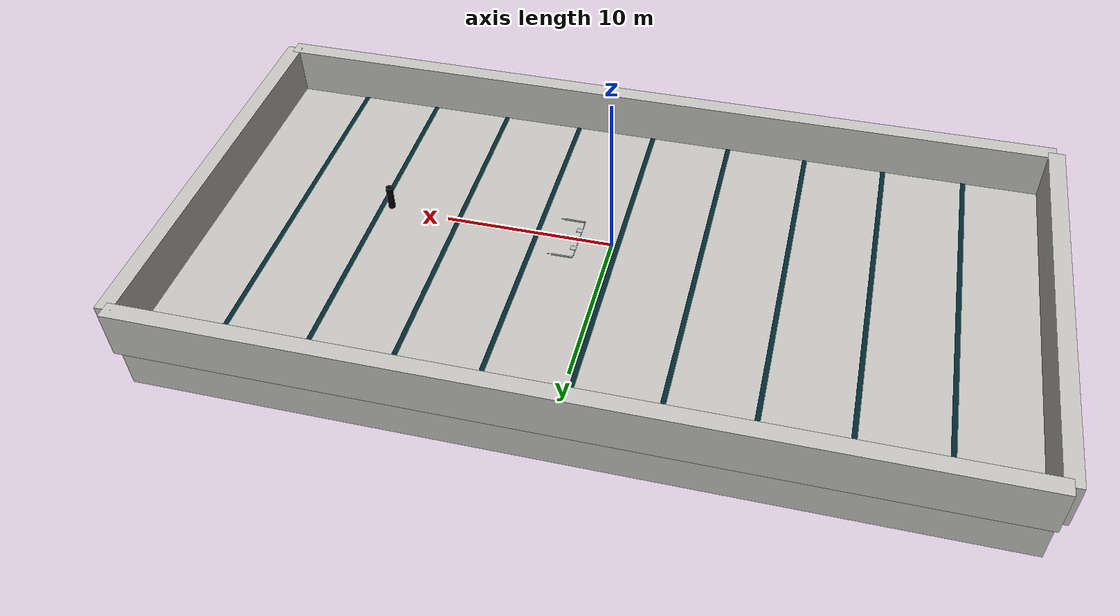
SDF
<?xml version="1.0" ?>
<sdf version="1.6">
  <world name="underwater_world">

    <!-- Configure the scene -->
    <scene>
      <!-- For turquoise ambient -->
      <ambient>0.0 1 1</ambient>
      <background>0.0 0.7 0.8</background>
    </scene>

    <!-- Configure the world physics -->
    <physics name="1ms" type="dart">
      <max_step_size>0.001</max_step_size>
      <real_time_factor>1.0</real_time_factor>
    </physics>
    <plugin
      filename="gz-sim-physics-system"
      name="gz::sim::systems::Physics">
    </plugin>
    <plugin
      filename="gz-sim-sensors-system"
      name="gz::sim::systems::Sensors">
      <render_engine>ogre2</render_engine>
    </plugin>
    <plugin
      filename="gz-sim-user-commands-system"
      name="gz::sim::systems::UserCommands">
    </plugin>
    <plugin
      filename="gz-sim-scene-broadcaster-system"
      name="gz::sim::systems::SceneBroadcaster">
    </plugin>
    <plugin
      filename="gz-sim-buoyancy-system"
      name="gz::sim::systems::Buoyancy">
      <uniform_fluid_density>1025</uniform_fluid_density>
    </plugin>
    <plugin filename="gz-sim-imu-system"
            name="gz::sim::systems::Imu">
    </plugin>
    <plugin
      filename="gz-sim-air-pressure-system"
      name="gz::sim::systems::AirPressure">
    </plugin>

    <!-- Configure the GUI -->
    <gui>
      <!-- For some reason this is required to get the GUI to render the scene ambient/background -->
      <plugin filename="MinimalScene" name="3D View">
        <gz-gui>
          <title>3D View</title>
          <property type="bool" key="showTitleBar">false</property>
          <property type="string" key="state">docked</property>
        </gz-gui>

        <engine>ogre2</engine>
        <scene>scene</scene>
        <ambient>0.0 1.0 1.0</ambient>
        <background_color>0.0 0.7 0.8</background_color>
      </plugin>

      <!-- Plugins that add functionality to the scene (these got removed when using the MinimalScene Plugin so we have to re-add them-->
      <plugin filename="EntityContextMenuPlugin" name="Entity context menu">
        <gz-gui>
          <property key="state" type="string">floating</property>
          <property key="width" type="double">5</property>
          <property key="height" type="double">5</property>
          <property key="showTitleBar" type="bool">false</property>
        </gz-gui>
      </plugin>
      <plugin filename="GzSceneManager" name="Scene Manager">
        <gz-gui>
          <property key="resizable" type="bool">false</property>
          <property key="width" type="double">5</property>
          <property key="height" type="double">5</property>
          <property key="state" type="string">floating</property>
          <property key="showTitleBar" type="bool">false</property>
        </gz-gui>
      </plugin>
      <plugin filename="InteractiveViewControl" name="Interactive view control">
        <gz-gui>
          <property key="resizable" type="bool">false</property>
          <property key="width" type="double">5</property>
          <property key="height" type="double">5</property>
          <property key="state" type="string">floating</property>
          <property key="showTitleBar" type="bool">false</property>
        </gz-gui>
      </plugin>
      <plugin filename="CameraTracking" name="Camera Tracking">
        <gz-gui>
          <property key="resizable" type="bool">false</property>
          <property key="width" type="double">5</property>
          <property key="height" type="double">5</property>
          <property key="state" type="string">floating</property>
          <property key="showTitleBar" type="bool">false</property>
        </gz-gui>
      </plugin>

      <plugin filename="Spawn" name="Spawn Entities">
        <gz-gui>
          <property key="resizable" type="bool">false</property>
          <property key="width" type="double">5</property>
          <property key="height" type="double">5</property>
          <property key="state" type="string">floating</property>
          <property key="showTitleBar" type="bool">false</property>
        </gz-gui>
      </plugin>

      <!-- World control -->
      <plugin filename="WorldControl" name="World control">
        <gz-gui>
          <title>World control</title>
          <property type="bool" key="showTitleBar">false</property>
          <property type="bool" key="resizable">false</property>
          <property type="double" key="height">72</property>
          <property type="double" key="z">1</property>

          <property type="string" key="state">floating</property>
          <anchors target="3D View">
            <line own="left" target="left"/>
            <line own="bottom" target="bottom"/>
          </anchors>
        </gz-gui>

        <play_pause>true</play_pause>
        <step>true</step>
        <start_paused>true</start_paused>
        <use_event>true</use_event>

      </plugin>

      <!-- World statistics -->
      <plugin filename="WorldStats" name="World stats">
        <gz-gui>
          <title>World stats</title>
          <property type="bool" key="showTitleBar">false</property>
          <property type="bool" key="resizable">false</property>
          <property type="double" key="height">110</property>
          <property type="double" key="width">290</property>
          <property type="double" key="z">1</property>

          <property type="string" key="state">floating</property>
          <anchors target="3D View">
            <line own="right" target="right"/>
            <line own="bottom" target="bottom"/>
          </anchors>
        </gz-gui>

        <sim_time>true</sim_time>
        <real_time>true</real_time>
        <real_time_factor>true</real_time_factor>
        <iterations>true</iterations>
      </plugin>

      <!-- Insert simple shapes -->
      <plugin filename="Shapes" name="Shapes">
        <gz-gui>
          <property key="resizable" type="bool">false</property>
          <property key="x" type="double">0</property>
          <property key="y" type="double">0</property>
          <property key="width" type="double">250</property>
          <property key="height" type="double">50</property>
          <property key="state" type="string">floating</property>
          <property key="showTitleBar" type="bool">false</property>
          <property key="cardBackground" type="string">#666666</property>
        </gz-gui>
      </plugin>

      <!-- Inspector -->
      <plugin filename="ComponentInspector" name="Component inspector">
        <gz-gui>
          <property type="string" key="state">docked</property>
        </gz-gui>
      </plugin>

      <!-- Entity tree -->
      <plugin filename="EntityTree" name="Entity tree">
        <gz-gui>
          <property type="string" key="state">docked</property>
        </gz-gui>
      </plugin>

      <!-- Translate/Rotate Tools -->
      <plugin filename="TransformControl" name="Transform control">
        <gz-gui>
          <property key="resizable" type="bool">false</property>
          <property key="x" type="double">0</property>
          <property key="y" type="double">50</property>
          <property key="width" type="double">250</property>
          <property key="height" type="double">50</property>
          <property key="state" type="string">floating</property>
          <property key="showTitleBar" type="bool">false</property>
          <property key="cardBackground" type="string">#777777</property>
        </gz-gui>
      </plugin>

    </gui>

    <!-- 3D MODELS -->
    <light name='sun1' type='directional'>
      <pose>0 0 10 0 0 0</pose>
      <cast_shadows>false</cast_shadows>
      <intensity>2</intensity>
      <direction>-0.5 0.10000000000000001 -0.90000000000000002</direction>
      <diffuse>0.800000012 0.800000012 0.800000012 1</diffuse>
      <specular>0.200000003 0.200000003 0.200000003 1</specular>
      <attenuation>
        <range>1000</range>
        <linear>0.01</linear>
        <constant>0.90000000000000002</constant>
        <quadratic>0.001</quadratic>
      </attenuation>
      <spot>
        <inner_angle>0</inner_angle>
        <outer_angle>0</outer_angle>
        <falloff>0</falloff>
      </spot>
    </light>

    <light name='sun2' type='point'>
      <pose>0 0 10 0 0 0</pose>
      <cast_shadows>false</cast_shadows>
      <intensity>2</intensity>
      <direction>-0.5 0.10000000000000001 -0.90000000000000002</direction>
      <diffuse>0.800000012 0.800000012 0.800000012 1</diffuse>
      <specular>0.200000003 0.200000003 0.200000003 1</specular>
      <attenuation>
        <range>1000</range>
        <linear>0.01</linear>
        <constant>0.90000000000000002</constant>
        <quadratic>0.001</quadratic>
      </attenuation>
      <spot>
        <inner_angle>0</inner_angle>
        <outer_angle>0</outer_angle>
        <falloff>0</falloff>
      </spot>
    </light>

    <model name='long_wall_1'>
      <pose>0 -12.5 0 0 0 0</pose>
      <link name='box_link'>
        <inertial>
          <inertia>
            <ixx>0.16666</ixx>
            <ixy>0</ixy>
            <ixz>0</ixz>
            <iyy>0.16666</iyy>
            <iyz>0</iyz>
            <izz>0.16666</izz>
          </inertia>
          <mass>1</mass>
          <pose>0 0 0 0 0 0</pose>
        </inertial>
        <collision name='box_collision'>
          <geometry>
            <box>
              <size>50 1 3</size>
            </box>
          </geometry>
          <surface>
            <friction>
              <ode/>
            </friction>
            <bounce/>
            <contact/>
          </surface>
        </collision>
        <visual name='box_visual'>
          <geometry>
            <box>
              <size>50 1 3</size>
            </box>
          </geometry>
          <material>
            <ambient>0.753, 0.749, 0.737 1</ambient>
            <diffuse>0.753, 0.749, 0.737 1</diffuse>
            <specular>0.753, 0.749, 0.737 1</specular>
          </material>
        </visual>
        <pose>0 0 0 0 0 0</pose>
        <enable_wind>false</enable_wind>
      </link>
      <static>true</static>
      <self_collide>false</self_collide>
    </model>
    <model name='long_wall_2'>
      <pose>0 12.5 0 0 0 0</pose>
      <link name='box_link'>
        <inertial>
          <inertia>
            <ixx>0.16666</ixx>
            <ixy>0</ixy>
            <ixz>0</ixz>
            <iyy>0.16666</iyy>
            <iyz>0</iyz>
            <izz>0.16666</izz>
          </inertia>
          <mass>1</mass>
          <pose>0 0 0 0 0 0</pose>
        </inertial>
        <collision name='box_collision'>
          <geometry>
            <box>
              <size>50 1 3</size>
            </box>
          </geometry>
          <surface>
            <friction>
              <ode/>
            </friction>
            <bounce/>
            <contact/>
          </surface>
        </collision>
        <visual name='box_visual'>
          <geometry>
            <box>
              <size>50 1 3</size>
            </box>
          </geometry>
          <material>
            <ambient>0.753, 0.749, 0.737 1</ambient>
            <diffuse>0.753, 0.749, 0.737 1</diffuse>
            <specular>0.753, 0.749, 0.737 1</specular>
          </material>
        </visual>
        <pose>0 0 0 0 0 0</pose>
        <enable_wind>false</enable_wind>
      </link>
      <static>true</static>
      <self_collide>false</self_collide>
    </model>
    <model name='wide_wall_1'>
      <pose>25 0 0 0 0 1.57</pose>
      <link name='box_link'>
        <inertial>
          <inertia>
            <ixx>0.16666</ixx>
            <ixy>0</ixy>
            <ixz>0</ixz>
            <iyy>0.16666</iyy>
            <iyz>0</iyz>
            <izz>0.16666</izz>
          </inertia>
          <mass>1</mass>
          <pose>0 0 0 0 0 0</pose>
        </inertial>
        <collision name='box_collision'>
          <geometry>
            <box>
              <size>25 1 3</size>
            </box>
          </geometry>
          <surface>
            <friction>
              <ode/>
            </friction>
            <bounce/>
            <contact/>
          </surface>
        </collision>
        <visual name='box_visual'>
          <geometry>
            <box>
              <size>25 1 3</size>
            </box>
          </geometry>
          <material>
            <ambient>0.753, 0.749, 0.737 1</ambient>
            <diffuse>0.753, 0.749, 0.737 1</diffuse>
            <specular>0.753, 0.749, 0.737 1</specular>
          </material>
        </visual>
        <pose>0 0 0 0 0 0</pose>
        <enable_wind>false</enable_wind>
      </link>
      <static>true</static>
      <self_collide>false</self_collide>
    </model>
    <model name='wide_wall_2'>
      <pose>-25 0 0 0 0 1.57</pose>
      <link name='box_link'>
        <inertial>
          <inertia>
            <ixx>0.16666</ixx>
            <ixy>0</ixy>
            <ixz>0</ixz>
            <iyy>0.16666</iyy>
            <iyz>0</iyz>
            <izz>0.16666</izz>
          </inertia>
          <mass>1</mass>
          <pose>0 0 0 0 0 0</pose>
        </inertial>
        <collision name='box_collision'>
          <geometry>
            <box>
              <size>25 1 3</size>
            </box>
          </geometry>
          <surface>
            <friction>
              <ode/>
            </friction>
            <bounce/>
            <contact/>
          </surface>
        </collision>
        <visual name='box_visual'>
          <geometry>
            <box>
              <size>25 1 3</size>
            </box>
          </geometry>
          <material>
            <ambient>0.753, 0.749, 0.737 1</ambient>
            <diffuse>0.753, 0.749, 0.737 1</diffuse>
            <specular>0.753, 0.749, 0.737 1</specular>
          </material>
        </visual>
        <pose>0 0 0 0 0 0</pose>
        <enable_wind>false</enable_wind>
      </link>
      <static>true</static>
      <self_collide>false</self_collide>
    </model>

    <model name='floor'>
      <pose>0 0 -3 0 0 0</pose>
      <link name='box_link'>
        <inertial>
          <inertia>
            <ixx>0.16666</ixx>
            <ixy>0</ixy>
            <ixz>0</ixz>
            <iyy>0.16666</iyy>
            <iyz>0</iyz>
            <izz>0.16666</izz>
          </inertia>
          <mass>1</mass>
          <pose>0 0 0 0 0 0</pose>
        </inertial>
        <collision name='box_collision'>
          <geometry>
            <box>
              <size>50 25 3</size>
            </box>
          </geometry>
          <surface>
            <friction>
              <ode/>
            </friction>
            <bounce/>
            <contact/>
          </surface>
        </collision>
        <visual name='box_visual'>
          <geometry>
            <box>
              <size>50 25 3</size>
            </box>
          </geometry>
          <material>
            <ambient>0.753, 0.749, 0.737 1</ambient>
            <diffuse>0.753, 0.749, 0.737 1</diffuse>
            <specular>0.753, 0.749, 0.737 1</specular>
          </material>
        </visual>
        <pose>0 0 0 0 0 0</pose>
        <enable_wind>false</enable_wind>
      </link>
      <static>true</static>
      <self_collide>false</self_collide>
    </model>

    <model name='lane1'>
      <pose>-20 0 -1.49 0 0 0</pose>
      <link name='box_link'>
        <inertial>
          <inertia>
            <ixx>0.16666</ixx>
            <ixy>0</ixy>
            <ixz>0</ixz>
            <iyy>0.16666</iyy>
            <iyz>0</iyz>
            <izz>0.16666</izz>
          </inertia>
          <mass>1</mass>
          <pose>0 0 0 0 0 0</pose>
        </inertial>
        <visual name='box_visual'>
          <geometry>
            <box>
              <size>.3 25 .01</size>
            </box>
          </geometry>
          <material>
            <ambient>0, 0.153, 0.18, 1</ambient>
            <diffuse>0, 0.153, 0.18, 1</diffuse>
            <specular>0, 0.153, 0.18, 1</specular>
          </material>
        </visual>
        <pose>0 0 0 0 0 0</pose>
        <enable_wind>false</enable_wind>
      </link>
      <static>true</static>
      <self_collide>false</self_collide>
    </model>

    <model name='lane2'>
      <pose>-15 0 -1.49 0 0 0</pose>
      <link name='box_link'>
        <inertial>
          <inertia>
            <ixx>0.16666</ixx>
            <ixy>0</ixy>
            <ixz>0</ixz>
            <iyy>0.16666</iyy>
            <iyz>0</iyz>
            <izz>0.16666</izz>
          </inertia>
          <mass>1</mass>
          <pose>0 0 0 0 0 0</pose>
        </inertial>
        <visual name='box_visual'>
          <geometry>
            <box>
              <size>.3 25 .01</size>
            </box>
          </geometry>
          <material>
            <ambient>0, 0.153, 0.18, 1</ambient>
            <diffuse>0, 0.153, 0.18, 1</diffuse>
            <specular>0, 0.153, 0.18, 1</specular>
          </material>
        </visual>
        <pose>0 0 0 0 0 0</pose>
        <enable_wind>false</enable_wind>
      </link>
      <static>true</static>
      <self_collide>false</self_collide>
    </model>

    <model name='lane3'>
      <pose>-10 0 -1.49 0 0 0</pose>
      <link name='box_link'>
        <inertial>
          <inertia>
            <ixx>0.16666</ixx>
            <ixy>0</ixy>
            <ixz>0</ixz>
            <iyy>0.16666</iyy>
            <iyz>0</iyz>
            <izz>0.16666</izz>
          </inertia>
          <mass>1</mass>
          <pose>0 0 0 0 0 0</pose>
        </inertial>
        <visual name='box_visual'>
          <geometry>
            <box>
              <size>.3 25 .01</size>
            </box>
          </geometry>
          <material>
            <ambient>0, 0.153, 0.18, 1</ambient>
            <diffuse>0, 0.153, 0.18, 1</diffuse>
            <specular>0, 0.153, 0.18, 1</specular>
          </material>
        </visual>
        <pose>0 0 0 0 0 0</pose>
        <enable_wind>false</enable_wind>
      </link>
      <static>true</static>
      <self_collide>false</self_collide>
    </model>

    <model name='lane4'>
      <pose>-5 0 -1.49 0 0 0</pose>
      <link name='box_link'>
        <inertial>
          <inertia>
            <ixx>0.16666</ixx>
            <ixy>0</ixy>
            <ixz>0</ixz>
            <iyy>0.16666</iyy>
            <iyz>0</iyz>
            <izz>0.16666</izz>
          </inertia>
          <mass>1</mass>
          <pose>0 0 0 0 0 0</pose>
        </inertial>
        <visual name='box_visual'>
          <geometry>
            <box>
              <size>.3 25 .01</size>
            </box>
          </geometry>
          <material>
            <ambient>0, 0.153, 0.18, 1</ambient>
            <diffuse>0, 0.153, 0.18, 1</diffuse>
            <specular>0, 0.153, 0.18, 1</specular>
          </material>
        </visual>
        <pose>0 0 0 0 0 0</pose>
        <enable_wind>false</enable_wind>
      </link>
      <static>true</static>
      <self_collide>false</self_collide>
    </model>

    <model name='lane5'>
      <pose>0 0 -1.49 0 0 0</pose>
      <link name='box_link'>
        <inertial>
          <inertia>
            <ixx>0.16666</ixx>
            <ixy>0</ixy>
            <ixz>0</ixz>
            <iyy>0.16666</iyy>
            <iyz>0</iyz>
            <izz>0.16666</izz>
          </inertia>
          <mass>1</mass>
          <pose>0 0 0 0 0 0</pose>
        </inertial>
        <visual name='box_visual'>
          <geometry>
            <box>
              <size>.3 25 .01</size>
            </box>
          </geometry>
          <material>
            <ambient>0, 0.153, 0.18, 1</ambient>
            <diffuse>0, 0.153, 0.18, 1</diffuse>
            <specular>0, 0.153, 0.18, 1</specular>
          </material>
        </visual>
        <pose>0 0 0 0 0 0</pose>
        <enable_wind>false</enable_wind>
      </link>
      <static>true</static>
      <self_collide>false</self_collide>
    </model>

    <model name='lane6'>
      <pose>5 0 -1.49 0 0 0</pose>
      <link name='box_link'>
        <inertial>
          <inertia>
            <ixx>0.16666</ixx>
            <ixy>0</ixy>
            <ixz>0</ixz>
            <iyy>0.16666</iyy>
            <iyz>0</iyz>
            <izz>0.16666</izz>
          </inertia>
          <mass>1</mass>
          <pose>0 0 0 0 0 0</pose>
        </inertial>
        <visual name='box_visual'>
          <geometry>
            <box>
              <size>.3 25 .01</size>
            </box>
          </geometry>
          <material>
            <ambient>0, 0.153, 0.18, 1</ambient>
            <diffuse>0, 0.153, 0.18, 1</diffuse>
            <specular>0, 0.153, 0.18, 1</specular>
          </material>
        </visual>
        <pose>0 0 0 0 0 0</pose>
        <enable_wind>false</enable_wind>
      </link>
      <static>true</static>
      <self_collide>false</self_collide>
    </model>

    <model name='lane7'>
      <pose>10 0 -1.49 0 0 0</pose>
      <link name='box_link'>
        <inertial>
          <inertia>
            <ixx>0.16666</ixx>
            <ixy>0</ixy>
            <ixz>0</ixz>
            <iyy>0.16666</iyy>
            <iyz>0</iyz>
            <izz>0.16666</izz>
          </inertia>
          <mass>1</mass>
          <pose>0 0 0 0 0 0</pose>
        </inertial>
        <visual name='box_visual'>
          <geometry>
            <box>
              <size>.3 25 .01</size>
            </box>
          </geometry>
          <material>
            <ambient>0, 0.153, 0.18, 1</ambient>
            <diffuse>0, 0.153, 0.18, 1</diffuse>
            <specular>0, 0.153, 0.18, 1</specular>
          </material>
        </visual>
        <pose>0 0 0 0 0 0</pose>
        <enable_wind>false</enable_wind>
      </link>
      <static>true</static>
      <self_collide>false</self_collide>
    </model>

    <model name='lane8'>
      <pose>15 0 -1.49 0 0 0</pose>
      <link name='box_link'>
        <inertial>
          <inertia>
            <ixx>0.16666</ixx>
            <ixy>0</ixy>
            <ixz>0</ixz>
            <iyy>0.16666</iyy>
            <iyz>0</iyz>
            <izz>0.16666</izz>
          </inertia>
          <mass>1</mass>
          <pose>0 0 0 0 0 0</pose>
        </inertial>
        <visual name='box_visual'>
          <geometry>
            <box>
              <size>.3 25 .01</size>
            </box>
          </geometry>
          <material>
            <ambient>0, 0.153, 0.18, 1</ambient>
            <diffuse>0, 0.153, 0.18, 1</diffuse>
            <specular>0, 0.153, 0.18, 1</specular>
          </material>
        </visual>
        <pose>0 0 0 0 0 0</pose>
        <enable_wind>false</enable_wind>
      </link>
      <static>true</static>
      <self_collide>false</self_collide>
    </model>

    <model name='lane9'>
      <pose>20 0 -1.49 0 0 0</pose>
      <link name='box_link'>
        <inertial>
          <inertia>
            <ixx>0.16666</ixx>
            <ixy>0</ixy>
            <ixz>0</ixz>
            <iyy>0.16666</iyy>
            <iyz>0</iyz>
            <izz>0.16666</izz>
          </inertia>
          <mass>1</mass>
          <pose>0 0 0 0 0 0</pose>
        </inertial>
        <visual name='box_visual'>
          <geometry>
            <box>
              <size>.3 25 .01</size>
            </box>
          </geometry>
          <material>
            <ambient>0, 0.153, 0.18, 1</ambient>
            <diffuse>0, 0.153, 0.18, 1</diffuse>
            <specular>0, 0.153, 0.18, 1</specular>
          </material>
        </visual>
        <pose>0 0 0 0 0 0</pose>
        <enable_wind>false</enable_wind>
      </link>
      <static>true</static>
      <self_collide>false</self_collide>
    </model>

    <!-- TASKS -->
    <!-- GATE TASK -->
    <include>
      <uri>Gate</uri>
      <pose>3.5 0 0 1.57 0 1.57</pose>
    </include>

    <model name='prequal_marker'>
      <pose>13.5 0 1 0 0 0</pose>
      <link name='marker_cylinder'>
        <inertial>
          <inertia>
            <ixx>0.16666</ixx>
            <ixy>0</ixy>
            <ixz>0</ixz>
            <iyy>0.16666</iyy>
            <iyz>0</iyz>
            <izz>0.16666</izz>
          </inertia>
          <mass>1</mass>
          <pose>0 0 0 0 0 0</pose>
        </inertial>
        <visual name='marker_cylinder_visual'>
          <geometry>
            <cylinder>
                <radius>0.2</radius>
                <length>1.5</length>
            </cylinder>
          </geometry>
          <material>
            <ambient>0.0, 0.0, 0.0, 1</ambient>
            <diffuse>0.0, 0.0, 0.0, 1</diffuse>
            <specular>0.0, 0.0, 0.0, 1</specular>
          </material>
        </visual>
        <pose>0 0 0 0 0 0</pose>
        <enable_wind>false</enable_wind>
      </link>
      <static>true</static>
      <self_collide>false</self_collide>
    </model>

    <light name='gate_light_1' type='point'>
      <pose>0.7927309311409738 -2.4711442661574994 2 0 0 0</pose>
      <cast_shadows>false</cast_shadows>
      <intensity>1</intensity>
      <direction>0 0 -1</direction>
      <diffuse>0.5 0.5 0.5 1</diffuse>
      <specular>0.5 0.5 0.5 1</specular>
      <attenuation>
        <range>4</range>
        <linear>0.5</linear>
        <constant>0.20000000000000001</constant>
        <quadratic>0.01</quadratic>
      </attenuation>
      <spot>
        <inner_angle>0</inner_angle>
        <outer_angle>0</outer_angle>
        <falloff>0</falloff>
      </spot>
    </light>
    <light name='gate_light_2' type='point'>
      <pose>3.289994282986644 -4.6428032485910791 2 0 0 0</pose>
      <cast_shadows>false</cast_shadows>
      <intensity>1</intensity>
      <direction>0 0 -1</direction>
      <diffuse>0.5 0.5 0.5 1</diffuse>
      <specular>0.5 0.5 0.5 1</specular>
      <attenuation>
        <range>4</range>
        <linear>0.5</linear>
        <constant>0.20000000000000001</constant>
        <quadratic>0.01</quadratic>
      </attenuation>
      <spot>
        <inner_angle>0</inner_angle>
        <outer_angle>0</outer_angle>
        <falloff>0</falloff>
      </spot>
    </light>
    <light name='gate_light_3' type='point'>
      <pose>2.8094659113845344 -3.4914567877083336 2 0 0 0</pose>
      <cast_shadows>false</cast_shadows>
      <intensity>1</intensity>
      <direction>0 0 -1</direction>
      <diffuse>0.5 0.5 0.5 1</diffuse>
      <specular>0.5 0.5 0.5 1</specular>
      <attenuation>
        <range>4</range>
        <linear>0.5</linear>
        <constant>0.20000000000000001</constant>
        <quadratic>0.01</quadratic>
      </attenuation>
      <spot>
        <inner_angle>0</inner_angle>
        <outer_angle>0</outer_angle>
        <falloff>0</falloff>
      </spot>
    </light>
    <light name='gate_light_4' type='point'>
      <pose>1.4918820599035918 -1.2573885309051365 2 0 0 0</pose>
      <cast_shadows>false</cast_shadows>
      <intensity>1</intensity>
      <direction>0 0 -1</direction>
      <diffuse>0.5 0.5 0.5 1</diffuse>
      <specular>0.5 0.5 0.5 1</specular>
      <attenuation>
        <range>4</range>
        <linear>0.5</linear>
        <constant>0.20000000000000001</constant>
        <quadratic>0.01</quadratic>
      </attenuation>
      <spot>
        <inner_angle>0</inner_angle>
        <outer_angle>0</outer_angle>
        <falloff>0</falloff>
      </spot>
    </light>
  </world>
</sdf>

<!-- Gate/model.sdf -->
<sdf version="1.10">
    <model name="Gate">
        <cast_shadows>false</cast_shadows>
        <link name="link">
            <cast_shadows>false</cast_shadows>
            <collision name="collision">
                <geometry>
                    <mesh>
                        <uri>meshes/Robosubgate2025.obj</uri>
                        <scale>1 1 1</scale>
                    </mesh>
                </geometry>
            </collision>

            <visual name="visual">
                <geometry>
                    <mesh>
                        <uri>meshes/Robosubgate2025.obj</uri>
                        <scale>1 1 1</scale>
                    </mesh>
                </geometry>
                <cast_shadows>false</cast_shadows>
            </visual>
        </link>
        <static>true</static>
    </model>
</sdf>
